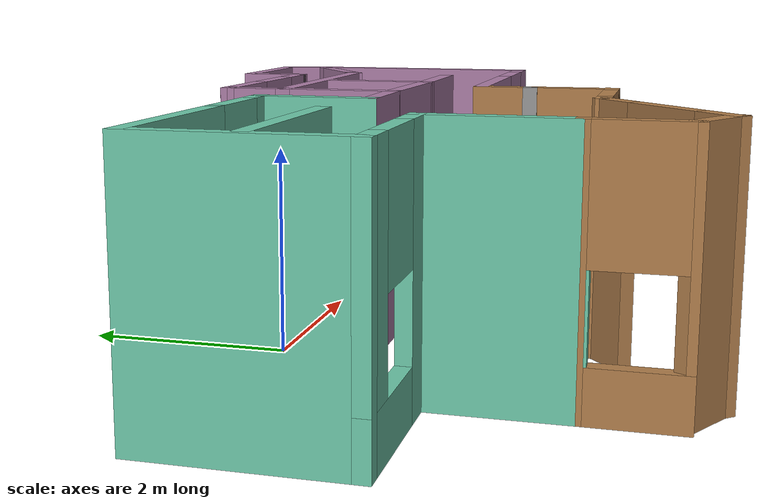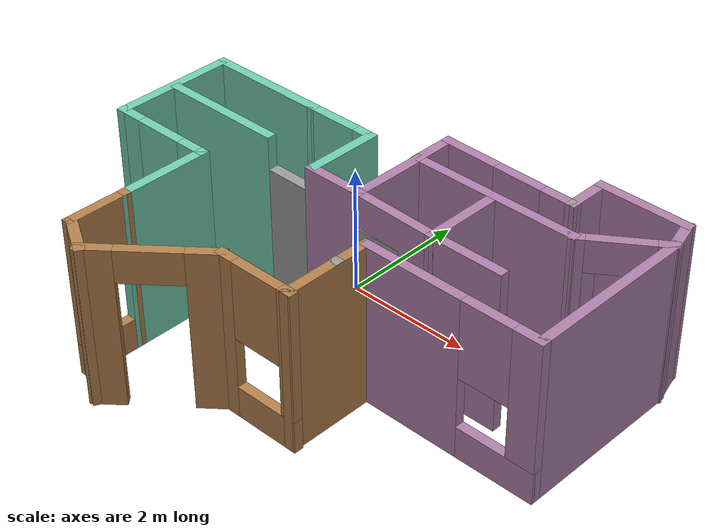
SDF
<?xml version='1.0'?>
<sdf version='1.7'>
  <model name='Dreamhouse'>
    <pose>0.844277 -1.35477 0 0 -0 0</pose>
    <link name='Door_2'>
      <collision name='Door_2_Collision'>
        <geometry>
          <box>
            <size>0.9 0.17 2</size>
          </box>
        </geometry>
        <pose>0 0 1 0 -0 0</pose>
      </collision>
      <visual name='Door_2_Visual'>
        <pose>0 0 1 0 -0 0</pose>
        <geometry>
          <box>
            <size>0.9 0.17 2</size>
          </box>
        </geometry>
        <material>
          <script>
            <uri>file://media/materials/scripts/gazebo.material</uri>
            <name>Gazebo/Grey</name>
          </script>
        </material>
      </visual>
      <pose>-1.27114 0.649396 0 0 -0 0</pose>
    </link>
    <link name='Door_3'>
      <collision name='Door_3_Collision'>
        <geometry>
          <box>
            <size>0.9 0.17 2</size>
          </box>
        </geometry>
        <pose>0 0 1 0 -0 0</pose>
      </collision>
      <visual name='Door_3_Visual'>
        <pose>0 0 1 0 -0 0</pose>
        <geometry>
          <box>
            <size>0.9 0.17 2</size>
          </box>
        </geometry>
        <material>
          <script>
            <uri>file://media/materials/scripts/gazebo.material</uri>
            <name>Gazebo/Grey</name>
          </script>
        </material>
      </visual>
      <pose>0.564272 0.465855 0 0 -0 0</pose>
    </link>
    <link name='Wall_0'>
      <collision name='Wall_0_Collision'>
        <geometry>
          <box>
            <size>1.5 0.15 2.5</size>
          </box>
        </geometry>
        <pose>0 0 1.25 0 -0 0</pose>
      </collision>
      <visual name='Wall_0_Visual'>
        <pose>0 0 1.25 0 -0 0</pose>
        <geometry>
          <box>
            <size>1.5 0.15 2.5</size>
          </box>
        </geometry>
        <material>
          <script>
            <uri>file://media/materials/scripts/gazebo.material</uri>
            <name>Gazebo/Grey</name>
          </script>
          <ambient>0.435294 0.796078 0.67451 1</ambient>
        </material>
        <meta>
          <layer>0</layer>
        </meta>
      </visual>
      <pose>-2.13428 -0.940234 0 0 -0 -1.5708</pose>
    </link>
    <link name='Wall_1'>
      <pose>-2.13754 -2.0435 0 0 -0 -1.57842</pose>
      <visual name='Wall_1_Visual_0'>
        <pose>-0.441135 0 1.25 0 -0 0</pose>
        <geometry>
          <box>
            <size>0.124594 0.15 2.5</size>
          </box>
        </geometry>
        <material>
          <script>
            <uri>file://media/materials/scripts/gazebo.material</uri>
            <name>Gazebo/Wood</name>
          </script>
          <ambient>0.760784 0.662745 0.627451 1</ambient>
        </material>
        <meta>
          <layer>0</layer>
        </meta>
      </visual>
      <collision name='Wall_1_Collision_0'>
        <geometry>
          <box>
            <size>0.124594 0.15 2.5</size>
          </box>
        </geometry>
        <pose>-0.441135 0 1.25 0 -0 0</pose>
      </collision>
      <visual name='Wall_1_Visual_1'>
        <pose>0.062297 0 0.25 0 -0 0</pose>
        <geometry>
          <box>
            <size>0.88227 0.15 0.5</size>
          </box>
        </geometry>
        <material>
          <script>
            <uri>file://media/materials/scripts/gazebo.material</uri>
            <name>Gazebo/Wood</name>
          </script>
          <ambient>0.760784 0.662745 0.627451 1</ambient>
        </material>
        <meta>
          <layer>0</layer>
        </meta>
      </visual>
      <collision name='Wall_1_Collision_1'>
        <geometry>
          <box>
            <size>0.88227 0.15 0.5</size>
          </box>
        </geometry>
        <pose>0.062297 0 0.25 0 -0 0</pose>
      </collision>
      <visual name='Wall_1_Visual_2'>
        <pose>0.462297 0 1.5 0 -0 0</pose>
        <geometry>
          <box>
            <size>0.08227 0.15 2</size>
          </box>
        </geometry>
        <material>
          <script>
            <uri>file://media/materials/scripts/gazebo.material</uri>
            <name>Gazebo/Wood</name>
          </script>
          <ambient>0.760784 0.662745 0.627451 1</ambient>
        </material>
        <meta>
          <layer>0</layer>
        </meta>
      </visual>
      <collision name='Wall_1_Collision_2'>
        <geometry>
          <box>
            <size>0.08227 0.15 2</size>
          </box>
        </geometry>
        <pose>0.462297 0 1.5 0 -0 0</pose>
      </collision>
      <visual name='Wall_1_Visual_3'>
        <pose>0.021162 0 1.9 0 -0 0</pose>
        <geometry>
          <box>
            <size>0.8 0.15 1.2</size>
          </box>
        </geometry>
        <material>
          <script>
            <uri>file://media/materials/scripts/gazebo.material</uri>
            <name>Gazebo/Wood</name>
          </script>
          <ambient>0.760784 0.662745 0.627451 1</ambient>
        </material>
        <meta>
          <layer>0</layer>
        </meta>
      </visual>
      <collision name='Wall_1_Collision_3'>
        <geometry>
          <box>
            <size>0.8 0.15 1.2</size>
          </box>
        </geometry>
        <pose>0.021162 0 1.9 0 -0 0</pose>
      </collision>
    </link>
    <link name='Wall_11'>
      <pose>-2.93428 -0.265234 0 0 -0 3.14159</pose>
      <visual name='Wall_11_Visual_0'>
        <pose>-0.627836 0 1.25 0 -0 0</pose>
        <geometry>
          <box>
            <size>0.494328 0.15 2.5</size>
          </box>
        </geometry>
        <material>
          <script>
            <uri>file://media/materials/scripts/gazebo.material</uri>
            <name>Gazebo/Grey</name>
          </script>
          <ambient>0.435294 0.796078 0.67451 1</ambient>
        </material>
        <meta>
          <layer>0</layer>
        </meta>
      </visual>
      <collision name='Wall_11_Collision_0'>
        <geometry>
          <box>
            <size>0.494328 0.15 2.5</size>
          </box>
        </geometry>
        <pose>-0.627836 0 1.25 0 -0 0</pose>
      </collision>
      <visual name='Wall_11_Visual_1'>
        <pose>0.247164 0 0.25 0 -0 0</pose>
        <geometry>
          <box>
            <size>1.25567 0.15 0.5</size>
          </box>
        </geometry>
        <material>
          <script>
            <uri>file://media/materials/scripts/gazebo.material</uri>
            <name>Gazebo/Grey</name>
          </script>
          <ambient>0.435294 0.796078 0.67451 1</ambient>
        </material>
        <meta>
          <layer>0</layer>
        </meta>
      </visual>
      <collision name='Wall_11_Collision_1'>
        <geometry>
          <box>
            <size>1.25567 0.15 0.5</size>
          </box>
        </geometry>
        <pose>0.247164 0 0.25 0 -0 0</pose>
      </collision>
      <visual name='Wall_11_Visual_2'>
        <pose>0.647164 0 1.5 0 -0 0</pose>
        <geometry>
          <box>
            <size>0.455672 0.15 2</size>
          </box>
        </geometry>
        <material>
          <script>
            <uri>file://media/materials/scripts/gazebo.material</uri>
            <name>Gazebo/Grey</name>
          </script>
          <ambient>0.435294 0.796078 0.67451 1</ambient>
        </material>
        <meta>
          <layer>0</layer>
        </meta>
      </visual>
      <collision name='Wall_11_Collision_2'>
        <geometry>
          <box>
            <size>0.455672 0.15 2</size>
          </box>
        </geometry>
        <pose>0.647164 0 1.5 0 -0 0</pose>
      </collision>
      <visual name='Wall_11_Visual_3'>
        <pose>0.019328 0 1.9 0 -0 0</pose>
        <geometry>
          <box>
            <size>0.8 0.15 1.2</size>
          </box>
        </geometry>
        <material>
          <script>
            <uri>file://media/materials/scripts/gazebo.material</uri>
            <name>Gazebo/Grey</name>
          </script>
          <ambient>0.435294 0.796078 0.67451 1</ambient>
        </material>
        <meta>
          <layer>0</layer>
        </meta>
      </visual>
      <collision name='Wall_11_Collision_3'>
        <geometry>
          <box>
            <size>0.8 0.15 1.2</size>
          </box>
        </geometry>
        <pose>0.019328 0 1.9 0 -0 0</pose>
      </collision>
    </link>
    <link name='Wall_12'>
      <collision name='Wall_12_Collision'>
        <geometry>
          <box>
            <size>2 0.15 2.5</size>
          </box>
        </geometry>
        <pose>0 0 1.25 0 -0 0</pose>
      </collision>
      <visual name='Wall_12_Visual'>
        <pose>0 0 1.25 0 -0 0</pose>
        <geometry>
          <box>
            <size>2 0.15 2.5</size>
          </box>
        </geometry>
        <material>
          <script>
            <uri>file://media/materials/scripts/gazebo.material</uri>
            <name>Gazebo/Grey</name>
          </script>
          <ambient>0.435294 0.796078 0.67451 1</ambient>
        </material>
        <meta>
          <layer>0</layer>
        </meta>
      </visual>
      <pose>-3.73428 0.659766 0 0 -0 1.5708</pose>
    </link>
    <link name='Wall_13'>
      <collision name='Wall_13_Collision'>
        <geometry>
          <box>
            <size>2 0.15 2.5</size>
          </box>
        </geometry>
        <pose>0 0 1.25 0 -0 0</pose>
      </collision>
      <visual name='Wall_13_Visual'>
        <pose>0 0 1.25 0 -0 0</pose>
        <geometry>
          <box>
            <size>2 0.15 2.5</size>
          </box>
        </geometry>
        <material>
          <script>
            <uri>file://media/materials/scripts/gazebo.material</uri>
            <name>Gazebo/Grey</name>
          </script>
          <ambient>0.435294 0.796078 0.67451 1</ambient>
        </material>
        <meta>
          <layer>0</layer>
        </meta>
      </visual>
      <pose>-2.80928 1.58477 0 0 -0 0</pose>
    </link>
    <link name='Wall_14'>
      <pose>-1.33428 1.58477 0 0 -0 0</pose>
      <visual name='Wall_14_Visual_0'>
        <pose>-0.572703 0 1.25 0 -0 0</pose>
        <geometry>
          <box>
            <size>0.104593 0.15 2.5</size>
          </box>
        </geometry>
        <material>
          <script>
            <uri>file://media/materials/scripts/gazebo.material</uri>
            <name>Gazebo/Grey</name>
          </script>
          <ambient>0.435294 0.796078 0.67451 1</ambient>
        </material>
        <meta>
          <layer>0</layer>
        </meta>
      </visual>
      <collision name='Wall_14_Collision_0'>
        <geometry>
          <box>
            <size>0.104593 0.15 2.5</size>
          </box>
        </geometry>
        <pose>-0.572703 0 1.25 0 -0 0</pose>
      </collision>
      <visual name='Wall_14_Visual_1'>
        <pose>0.052297 0 0.25 0 -0 0</pose>
        <geometry>
          <box>
            <size>1.14541 0.15 0.5</size>
          </box>
        </geometry>
        <material>
          <script>
            <uri>file://media/materials/scripts/gazebo.material</uri>
            <name>Gazebo/Grey</name>
          </script>
          <ambient>0.435294 0.796078 0.67451 1</ambient>
        </material>
        <meta>
          <layer>0</layer>
        </meta>
      </visual>
      <collision name='Wall_14_Collision_1'>
        <geometry>
          <box>
            <size>1.14541 0.15 0.5</size>
          </box>
        </geometry>
        <pose>0.052297 0 0.25 0 -0 0</pose>
      </collision>
      <visual name='Wall_14_Visual_2'>
        <pose>0.452297 0 1.5 0 -0 0</pose>
        <geometry>
          <box>
            <size>0.345407 0.15 2</size>
          </box>
        </geometry>
        <material>
          <script>
            <uri>file://media/materials/scripts/gazebo.material</uri>
            <name>Gazebo/Grey</name>
          </script>
          <ambient>0.435294 0.796078 0.67451 1</ambient>
        </material>
        <meta>
          <layer>0</layer>
        </meta>
      </visual>
      <collision name='Wall_14_Collision_2'>
        <geometry>
          <box>
            <size>0.345407 0.15 2</size>
          </box>
        </geometry>
        <pose>0.452297 0 1.5 0 -0 0</pose>
      </collision>
      <visual name='Wall_14_Visual_3'>
        <pose>-0.120407 0 1.9 0 -0 0</pose>
        <geometry>
          <box>
            <size>0.8 0.15 1.2</size>
          </box>
        </geometry>
        <material>
          <script>
            <uri>file://media/materials/scripts/gazebo.material</uri>
            <name>Gazebo/Grey</name>
          </script>
          <ambient>0.435294 0.796078 0.67451 1</ambient>
        </material>
        <meta>
          <layer>0</layer>
        </meta>
      </visual>
      <collision name='Wall_14_Collision_3'>
        <geometry>
          <box>
            <size>0.8 0.15 1.2</size>
          </box>
        </geometry>
        <pose>-0.120407 0 1.9 0 -0 0</pose>
      </collision>
    </link>
    <link name='Wall_15'>
      <collision name='Wall_15_Collision'>
        <geometry>
          <box>
            <size>1.25 0.15 2.5</size>
          </box>
        </geometry>
        <pose>0 0 1.25 0 -0 0</pose>
      </collision>
      <visual name='Wall_15_Visual'>
        <pose>0 0 1.25 0 -0 0</pose>
        <geometry>
          <box>
            <size>1.25 0.15 2.5</size>
          </box>
        </geometry>
        <material>
          <script>
            <uri>file://media/materials/scripts/gazebo.material</uri>
            <name>Gazebo/Grey</name>
          </script>
          <ambient>0.435294 0.796078 0.67451 1</ambient>
        </material>
        <meta>
          <layer>0</layer>
        </meta>
      </visual>
      <pose>-0.784277 1.03477 0 0 -0 -1.5708</pose>
    </link>
    <link name='Wall_16'>
      <collision name='Wall_16_Collision'>
        <geometry>
          <box>
            <size>1 0.15 2.5</size>
          </box>
        </geometry>
        <pose>0 0 1.25 0 -0 0</pose>
      </collision>
      <visual name='Wall_16_Visual'>
        <pose>0 0 1.25 0 -0 0</pose>
        <geometry>
          <box>
            <size>1 0.15 2.5</size>
          </box>
        </geometry>
        <material>
          <script>
            <uri>file://media/materials/scripts/gazebo.material</uri>
            <name>Gazebo/Grey</name>
          </script>
          <ambient>0.678431 0.498039 0.658824 1</ambient>
        </material>
        <meta>
          <layer>0</layer>
        </meta>
      </visual>
      <pose>-0.359277 0.484766 0 0 -0 0</pose>
    </link>
    <link name='Wall_17'>
      <collision name='Wall_17_Collision'>
        <geometry>
          <box>
            <size>1.29018 0.15 2.5</size>
          </box>
        </geometry>
        <pose>0 0 1.25 0 -0 0</pose>
      </collision>
      <visual name='Wall_17_Visual'>
        <pose>0 0 1.25 0 -0 0</pose>
        <geometry>
          <box>
            <size>1.29018 0.15 2.5</size>
          </box>
        </geometry>
        <material>
          <script>
            <uri>file://media/materials/scripts/gazebo.material</uri>
            <name>Gazebo/Grey</name>
          </script>
          <ambient>0.678431 0.498039 0.658824 1</ambient>
        </material>
        <meta>
          <layer>0</layer>
        </meta>
      </visual>
      <pose>0.070723 1.05477 0 0 -0 1.56202</pose>
    </link>
    <link name='Wall_2'>
      <collision name='Wall_2_Collision'>
        <geometry>
          <box>
            <size>0.75 0.15 2.5</size>
          </box>
        </geometry>
        <pose>0 0 1.25 0 -0 0</pose>
      </collision>
      <visual name='Wall_2_Visual'>
        <pose>0 0 1.25 0 -0 0</pose>
        <geometry>
          <box>
            <size>0.75 0.15 2.5</size>
          </box>
        </geometry>
        <material>
          <script>
            <uri>file://media/materials/scripts/gazebo.material</uri>
            <name>Gazebo/Wood</name>
          </script>
          <ambient>0.760784 0.662745 0.627451 1</ambient>
        </material>
        <meta>
          <layer>0</layer>
        </meta>
      </visual>
      <pose>-1.85041 -2.62176 0 0 -0 -0.523599</pose>
    </link>
    <link name='Wall_26'>
      <pose>2.3232 -0.265234 0 0 -0 0</pose>
      <visual name='Wall_26_Visual_0'>
        <pose>-0.628405 0 1.25 0 -0 0</pose>
        <geometry>
          <box>
            <size>1.6567 0.15 2.5</size>
          </box>
        </geometry>
        <material>
          <script>
            <uri>file://media/materials/scripts/gazebo.material</uri>
            <name>Gazebo/Grey</name>
          </script>
          <ambient>0.678431 0.498039 0.658824 1</ambient>
        </material>
        <meta>
          <layer>0</layer>
        </meta>
      </visual>
      <collision name='Wall_26_Collision_0'>
        <geometry>
          <box>
            <size>1.6567 0.15 2.5</size>
          </box>
        </geometry>
        <pose>-0.628405 0 1.25 0 -0 0</pose>
      </collision>
      <visual name='Wall_26_Visual_1'>
        <pose>0.828349 0 0.25 0 -0 0</pose>
        <geometry>
          <box>
            <size>1.25681 0.15 0.5</size>
          </box>
        </geometry>
        <material>
          <script>
            <uri>file://media/materials/scripts/gazebo.material</uri>
            <name>Gazebo/Grey</name>
          </script>
          <ambient>0.678431 0.498039 0.658824 1</ambient>
        </material>
        <meta>
          <layer>0</layer>
        </meta>
      </visual>
      <collision name='Wall_26_Collision_1'>
        <geometry>
          <box>
            <size>1.25681 0.15 0.5</size>
          </box>
        </geometry>
        <pose>0.828349 0 0.25 0 -0 0</pose>
      </collision>
      <visual name='Wall_26_Visual_2'>
        <pose>1.22835 0 1.5 0 -0 0</pose>
        <geometry>
          <box>
            <size>0.45681 0.15 2</size>
          </box>
        </geometry>
        <material>
          <script>
            <uri>file://media/materials/scripts/gazebo.material</uri>
            <name>Gazebo/Grey</name>
          </script>
          <ambient>0.678431 0.498039 0.658824 1</ambient>
        </material>
        <meta>
          <layer>0</layer>
        </meta>
      </visual>
      <collision name='Wall_26_Collision_2'>
        <geometry>
          <box>
            <size>0.45681 0.15 2</size>
          </box>
        </geometry>
        <pose>1.22835 0 1.5 0 -0 0</pose>
      </collision>
      <visual name='Wall_26_Visual_3'>
        <pose>0.599944 0 1.9 0 -0 0</pose>
        <geometry>
          <box>
            <size>0.8 0.15 1.2</size>
          </box>
        </geometry>
        <material>
          <script>
            <uri>file://media/materials/scripts/gazebo.material</uri>
            <name>Gazebo/Grey</name>
          </script>
          <ambient>0.678431 0.498039 0.658824 1</ambient>
        </material>
        <meta>
          <layer>0</layer>
        </meta>
      </visual>
      <collision name='Wall_26_Collision_3'>
        <geometry>
          <box>
            <size>0.8 0.15 1.2</size>
          </box>
        </geometry>
        <pose>0.599944 0 1.9 0 -0 0</pose>
      </collision>
    </link>
    <link name='Wall_27'>
      <collision name='Wall_27_Collision'>
        <geometry>
          <box>
            <size>2.75 0.15 2.5</size>
          </box>
        </geometry>
        <pose>0 0 1.25 0 -0 0</pose>
      </collision>
      <visual name='Wall_27_Visual'>
        <pose>0 0 1.25 0 -0 0</pose>
        <geometry>
          <box>
            <size>2.75 0.15 2.5</size>
          </box>
        </geometry>
        <material>
          <script>
            <uri>file://media/materials/scripts/gazebo.material</uri>
            <name>Gazebo/Grey</name>
          </script>
          <ambient>0.678431 0.498039 0.658824 1</ambient>
        </material>
        <meta>
          <layer>0</layer>
        </meta>
      </visual>
      <pose>3.70495 1.03477 0 0 -0 1.5708</pose>
    </link>
    <link name='Wall_3'>
      <pose>-0.933117 -2.1935 0 0 -0 0.698901</pose>
      <visual name='Wall_3_Visual_0'>
        <pose>-0.717615 0 1.25 0 -0 0</pose>
        <geometry>
          <box>
            <size>0.512357 0.15 2.5</size>
          </box>
        </geometry>
        <material>
          <script>
            <uri>file://media/materials/scripts/gazebo.material</uri>
            <name>Gazebo/Wood</name>
          </script>
          <ambient>0.760784 0.662745 0.627451 1</ambient>
        </material>
        <meta>
          <layer>0</layer>
        </meta>
      </visual>
      <collision name='Wall_3_Collision_0'>
        <geometry>
          <box>
            <size>0.512357 0.15 2.5</size>
          </box>
        </geometry>
        <pose>-0.717615 0 1.25 0 -0 0</pose>
      </collision>
      <visual name='Wall_3_Visual_1'>
        <pose>0.706179 0 1.25 0 -0 0</pose>
        <geometry>
          <box>
            <size>0.53523 0.15 2.5</size>
          </box>
        </geometry>
        <material>
          <script>
            <uri>file://media/materials/scripts/gazebo.material</uri>
            <name>Gazebo/Wood</name>
          </script>
          <ambient>0.760784 0.662745 0.627451 1</ambient>
        </material>
        <meta>
          <layer>0</layer>
        </meta>
      </visual>
      <collision name='Wall_3_Collision_1'>
        <geometry>
          <box>
            <size>0.53523 0.15 2.5</size>
          </box>
        </geometry>
        <pose>0.706179 0 1.25 0 -0 0</pose>
      </collision>
      <visual name='Wall_3_Visual_2'>
        <pose>-0.011436 0 2.25 0 -0 0</pose>
        <geometry>
          <box>
            <size>0.9 0.15 0.5</size>
          </box>
        </geometry>
        <material>
          <script>
            <uri>file://media/materials/scripts/gazebo.material</uri>
            <name>Gazebo/Wood</name>
          </script>
          <ambient>0.760784 0.662745 0.627451 1</ambient>
        </material>
        <meta>
          <layer>0</layer>
        </meta>
      </visual>
      <collision name='Wall_3_Collision_2'>
        <geometry>
          <box>
            <size>0.9 0.15 0.5</size>
          </box>
        </geometry>
        <pose>-0.011436 0 2.25 0 -0 0</pose>
      </collision>
    </link>
    <link name='Wall_30'>
      <collision name='Wall_30_Collision'>
        <geometry>
          <box>
            <size>0.15 0.15 2.5</size>
          </box>
        </geometry>
        <pose>0 0 1.25 0 -0 0</pose>
      </collision>
      <visual name='Wall_30_Visual'>
        <pose>0 0 1.25 0 -0 0</pose>
        <geometry>
          <box>
            <size>0.15 0.15 2.5</size>
          </box>
        </geometry>
        <material>
          <script>
            <uri>file://media/materials/scripts/gazebo.material</uri>
            <name>Gazebo/Grey</name>
          </script>
          <ambient>1 1 1 1</ambient>
        </material>
        <meta>
          <layer>0</layer>
        </meta>
      </visual>
      <pose>2.2269 2.18477 0 0 -0 0</pose>
    </link>
    <link name='Wall_31'>
      <collision name='Wall_31_Collision'>
        <geometry>
          <box>
            <size>0.15 0.15 2.5</size>
          </box>
        </geometry>
        <pose>0 0 1.25 0 -0 0</pose>
      </collision>
      <visual name='Wall_31_Visual'>
        <pose>0 0 1.25 0 -0 0</pose>
        <geometry>
          <box>
            <size>0.15 0.15 2.5</size>
          </box>
        </geometry>
        <material>
          <script>
            <uri>file://media/materials/scripts/gazebo.material</uri>
            <name>Gazebo/Grey</name>
          </script>
          <ambient>1 1 1 1</ambient>
        </material>
        <meta>
          <layer>0</layer>
        </meta>
      </visual>
      <pose>2.2269 2.18477 0 0 -0 0</pose>
    </link>
    <link name='Wall_32'>
      <collision name='Wall_32_Collision'>
        <geometry>
          <box>
            <size>0.15 0.15 2.5</size>
          </box>
        </geometry>
        <pose>0 0 1.25 0 -0 0</pose>
      </collision>
      <visual name='Wall_32_Visual'>
        <pose>0 0 1.25 0 -0 0</pose>
        <geometry>
          <box>
            <size>0.15 0.15 2.5</size>
          </box>
        </geometry>
        <material>
          <script>
            <uri>file://media/materials/scripts/gazebo.material</uri>
            <name>Gazebo/Grey</name>
          </script>
          <ambient>1 1 1 1</ambient>
        </material>
        <meta>
          <layer>0</layer>
        </meta>
      </visual>
      <pose>2.2269 2.18477 0 0 -0 0</pose>
    </link>
    <link name='Wall_38'>
      <collision name='Wall_38_Collision'>
        <geometry>
          <box>
            <size>2.75 0.15 2.5</size>
          </box>
        </geometry>
        <pose>0 0 1.25 0 -0 0</pose>
      </collision>
      <visual name='Wall_38_Visual'>
        <pose>0 0 1.25 0 -0 0</pose>
        <geometry>
          <box>
            <size>2.75 0.15 2.5</size>
          </box>
        </geometry>
        <material>
          <script>
            <uri>file://media/materials/scripts/gazebo.material</uri>
            <name>Gazebo/Grey</name>
          </script>
          <ambient>0.678431 0.498039 0.658824 1</ambient>
        </material>
        <meta>
          <layer>0</layer>
        </meta>
      </visual>
      <pose>1.36572 1.62477 0 0 -0 0</pose>
    </link>
    <link name='Wall_39'>
      <pose>3.19034 1.97977 0 0 -0 0.603872</pose>
      <visual name='Wall_39_Visual_0'>
        <pose>-0.59066 0 1.25 0 -0 0</pose>
        <geometry>
          <box>
            <size>0.219046 0.15 2.5</size>
          </box>
        </geometry>
        <material>
          <script>
            <uri>file://media/materials/scripts/gazebo.material</uri>
            <name>Gazebo/Grey</name>
          </script>
          <ambient>0.678431 0.498039 0.658824 1</ambient>
        </material>
        <meta>
          <layer>0</layer>
        </meta>
      </visual>
      <collision name='Wall_39_Collision_0'>
        <geometry>
          <box>
            <size>0.219046 0.15 2.5</size>
          </box>
        </geometry>
        <pose>-0.59066 0 1.25 0 -0 0</pose>
      </collision>
      <visual name='Wall_39_Visual_1'>
        <pose>0.559523 0 1.25 0 -0 0</pose>
        <geometry>
          <box>
            <size>0.28132 0.15 2.5</size>
          </box>
        </geometry>
        <material>
          <script>
            <uri>file://media/materials/scripts/gazebo.material</uri>
            <name>Gazebo/Grey</name>
          </script>
          <ambient>0.678431 0.498039 0.658824 1</ambient>
        </material>
        <meta>
          <layer>0</layer>
        </meta>
      </visual>
      <collision name='Wall_39_Collision_1'>
        <geometry>
          <box>
            <size>0.28132 0.15 2.5</size>
          </box>
        </geometry>
        <pose>0.559523 0 1.25 0 -0 0</pose>
      </collision>
      <visual name='Wall_39_Visual_2'>
        <pose>-0.031137 0 2.25 0 -0 0</pose>
        <geometry>
          <box>
            <size>0.9 0.15 0.5</size>
          </box>
        </geometry>
        <material>
          <script>
            <uri>file://media/materials/scripts/gazebo.material</uri>
            <name>Gazebo/Grey</name>
          </script>
          <ambient>0.678431 0.498039 0.658824 1</ambient>
        </material>
        <meta>
          <layer>0</layer>
        </meta>
      </visual>
      <collision name='Wall_39_Collision_2'>
        <geometry>
          <box>
            <size>0.9 0.15 0.5</size>
          </box>
        </geometry>
        <pose>-0.031137 0 2.25 0 -0 0</pose>
      </collision>
    </link>
    <link name='Wall_4'>
      <pose>0.3482 -1.61523 0 0 -0 0</pose>
      <visual name='Wall_4_Visual_0'>
        <pose>-0.513695 0 1.25 0 -0 0</pose>
        <geometry>
          <box>
            <size>0.309103 0.15 2.5</size>
          </box>
        </geometry>
        <material>
          <script>
            <uri>file://media/materials/scripts/gazebo.material</uri>
            <name>Gazebo/Wood</name>
          </script>
          <ambient>0.760784 0.662745 0.627451 1</ambient>
        </material>
        <meta>
          <layer>0</layer>
        </meta>
      </visual>
      <collision name='Wall_4_Collision_0'>
        <geometry>
          <box>
            <size>0.309103 0.15 2.5</size>
          </box>
        </geometry>
        <pose>-0.513695 0 1.25 0 -0 0</pose>
      </collision>
      <visual name='Wall_4_Visual_1'>
        <pose>0.154551 0 0.25 0 -0 0</pose>
        <geometry>
          <box>
            <size>1.02739 0.15 0.5</size>
          </box>
        </geometry>
        <material>
          <script>
            <uri>file://media/materials/scripts/gazebo.material</uri>
            <name>Gazebo/Wood</name>
          </script>
          <ambient>0.760784 0.662745 0.627451 1</ambient>
        </material>
        <meta>
          <layer>0</layer>
        </meta>
      </visual>
      <collision name='Wall_4_Collision_1'>
        <geometry>
          <box>
            <size>1.02739 0.15 0.5</size>
          </box>
        </geometry>
        <pose>0.154551 0 0.25 0 -0 0</pose>
      </collision>
      <visual name='Wall_4_Visual_2'>
        <pose>0.554551 0 1.5 0 -0 0</pose>
        <geometry>
          <box>
            <size>0.22739 0.15 2</size>
          </box>
        </geometry>
        <material>
          <script>
            <uri>file://media/materials/scripts/gazebo.material</uri>
            <name>Gazebo/Wood</name>
          </script>
          <ambient>0.760784 0.662745 0.627451 1</ambient>
        </material>
        <meta>
          <layer>0</layer>
        </meta>
      </visual>
      <collision name='Wall_4_Collision_2'>
        <geometry>
          <box>
            <size>0.22739 0.15 2</size>
          </box>
        </geometry>
        <pose>0.554551 0 1.5 0 -0 0</pose>
      </collision>
      <visual name='Wall_4_Visual_3'>
        <pose>0.040856 0 1.9 0 -0 0</pose>
        <geometry>
          <box>
            <size>0.8 0.15 1.2</size>
          </box>
        </geometry>
        <material>
          <script>
            <uri>file://media/materials/scripts/gazebo.material</uri>
            <name>Gazebo/Wood</name>
          </script>
          <ambient>0.760784 0.662745 0.627451 1</ambient>
        </material>
        <meta>
          <layer>0</layer>
        </meta>
      </visual>
      <collision name='Wall_4_Collision_3'>
        <geometry>
          <box>
            <size>0.8 0.15 1.2</size>
          </box>
        </geometry>
        <pose>0.040856 0 1.9 0 -0 0</pose>
      </collision>
    </link>
    <link name='Wall_41'>
      <collision name='Wall_41_Collision'>
        <geometry>
          <box>
            <size>2 0.15 2.5</size>
          </box>
        </geometry>
        <pose>0 0 1.25 0 -0 0</pose>
      </collision>
      <visual name='Wall_41_Visual'>
        <pose>0 0 1.25 0 -0 0</pose>
        <geometry>
          <box>
            <size>2 0.15 2.5</size>
          </box>
        </geometry>
        <material>
          <script>
            <uri>file://media/materials/scripts/gazebo.material</uri>
            <name>Gazebo/Grey</name>
          </script>
          <ambient>0.435294 0.796078 0.67451 1</ambient>
        </material>
        <meta>
          <layer>0</layer>
        </meta>
      </visual>
      <pose>-2.73218 0.649396 0 0 -0 0</pose>
    </link>
    <link name='Wall_43'>
      <collision name='Wall_43_Collision'>
        <geometry>
          <box>
            <size>1.25 0.15 2.5</size>
          </box>
        </geometry>
        <pose>0 0 1.25 0 -0 0</pose>
      </collision>
      <visual name='Wall_43_Visual'>
        <pose>0 0 1.25 0 -0 0</pose>
        <geometry>
          <box>
            <size>1.25 0.15 2.5</size>
          </box>
        </geometry>
        <material>
          <script>
            <uri>file://media/materials/scripts/gazebo.material</uri>
            <name>Gazebo/Grey</name>
          </script>
          <ambient>0.678431 0.498039 0.658824 1</ambient>
        </material>
        <meta>
          <layer>0</layer>
        </meta>
      </visual>
      <pose>1.39021 0.986513 0 0 -0 -1.5708</pose>
    </link>
    <link name='Wall_44'>
      <collision name='Wall_44_Collision'>
        <geometry>
          <box>
            <size>1.25 0.15 2.5</size>
          </box>
        </geometry>
        <pose>0 0 1.25 0 -0 0</pose>
      </collision>
      <visual name='Wall_44_Visual'>
        <pose>0 0 1.25 0 -0 0</pose>
        <geometry>
          <box>
            <size>1.25 0.15 2.5</size>
          </box>
        </geometry>
        <material>
          <script>
            <uri>file://media/materials/scripts/gazebo.material</uri>
            <name>Gazebo/Grey</name>
          </script>
          <ambient>0.678431 0.498039 0.658824 1</ambient>
        </material>
        <meta>
          <layer>0</layer>
        </meta>
      </visual>
      <pose>1.94021 0.436513 0 0 -0 0</pose>
    </link>
    <link name='Wall_46'>
      <collision name='Wall_46_Collision'>
        <geometry>
          <box>
            <size>1.47536 0.15 2.5</size>
          </box>
        </geometry>
        <pose>0 0 1.25 0 -0 0</pose>
      </collision>
      <visual name='Wall_46_Visual'>
        <pose>0 0 1.25 0 -0 0</pose>
        <geometry>
          <box>
            <size>1.47536 0.15 2.5</size>
          </box>
        </geometry>
        <material>
          <script>
            <uri>file://media/materials/scripts/gazebo.material</uri>
            <name>Gazebo/Grey</name>
          </script>
          <ambient>0.678431 0.498039 0.658824 1</ambient>
        </material>
        <meta>
          <layer>0</layer>
        </meta>
      </visual>
      <pose>0.727966 0.46064 0 0 -0 3.10518</pose>
    </link>
    <link name='Wall_50'>
      <collision name='Wall_50_Collision'>
        <geometry>
          <box>
            <size>0.75 0.15 2.5</size>
          </box>
        </geometry>
        <pose>0 0 1.25 0 -0 0</pose>
      </collision>
      <visual name='Wall_50_Visual'>
        <pose>0 0 1.25 0 -0 0</pose>
        <geometry>
          <box>
            <size>0.75 0.15 2.5</size>
          </box>
        </geometry>
        <material>
          <script>
            <uri>file://media/materials/scripts/gazebo.material</uri>
            <name>Gazebo/Grey</name>
          </script>
          <ambient>0.678431 0.498039 0.658824 1</ambient>
        </material>
        <meta>
          <layer>0</layer>
        </meta>
      </visual>
      <pose>0.065723 1.92477 0 0 -0 1.5708</pose>
    </link>
    <link name='Wall_51'>
      <pose>1.14631 2.20477 0 0 -0 -0.018506</pose>
      <visual name='Wall_51_Visual_0'>
        <pose>-0.682908 0 1.25 0 -0 0</pose>
        <geometry>
          <box>
            <size>0.945735 0.15 2.5</size>
          </box>
        </geometry>
        <material>
          <script>
            <uri>file://media/materials/scripts/gazebo.material</uri>
            <name>Gazebo/Grey</name>
          </script>
          <ambient>0.678431 0.498039 0.658824 1</ambient>
        </material>
        <meta>
          <layer>0</layer>
        </meta>
      </visual>
      <collision name='Wall_51_Collision_0'>
        <geometry>
          <box>
            <size>0.945735 0.15 2.5</size>
          </box>
        </geometry>
        <pose>-0.682908 0 1.25 0 -0 0</pose>
      </collision>
      <visual name='Wall_51_Visual_1'>
        <pose>0.472868 0 0.25 0 -0 0</pose>
        <geometry>
          <box>
            <size>1.36582 0.15 0.5</size>
          </box>
        </geometry>
        <material>
          <script>
            <uri>file://media/materials/scripts/gazebo.material</uri>
            <name>Gazebo/Grey</name>
          </script>
          <ambient>0.678431 0.498039 0.658824 1</ambient>
        </material>
        <meta>
          <layer>0</layer>
        </meta>
      </visual>
      <collision name='Wall_51_Collision_1'>
        <geometry>
          <box>
            <size>1.36582 0.15 0.5</size>
          </box>
        </geometry>
        <pose>0.472868 0 0.25 0 -0 0</pose>
      </collision>
      <visual name='Wall_51_Visual_2'>
        <pose>0.872868 0 1.5 0 -0 0</pose>
        <geometry>
          <box>
            <size>0.565816 0.15 2</size>
          </box>
        </geometry>
        <material>
          <script>
            <uri>file://media/materials/scripts/gazebo.material</uri>
            <name>Gazebo/Grey</name>
          </script>
          <ambient>0.678431 0.498039 0.658824 1</ambient>
        </material>
        <meta>
          <layer>0</layer>
        </meta>
      </visual>
      <collision name='Wall_51_Collision_2'>
        <geometry>
          <box>
            <size>0.565816 0.15 2</size>
          </box>
        </geometry>
        <pose>0.872868 0 1.5 0 -0 0</pose>
      </collision>
      <visual name='Wall_51_Visual_3'>
        <pose>0.18996 0 1.9 0 -0 0</pose>
        <geometry>
          <box>
            <size>0.8 0.15 1.2</size>
          </box>
        </geometry>
        <material>
          <script>
            <uri>file://media/materials/scripts/gazebo.material</uri>
            <name>Gazebo/Grey</name>
          </script>
          <ambient>0.678431 0.498039 0.658824 1</ambient>
        </material>
        <meta>
          <layer>0</layer>
        </meta>
      </visual>
      <collision name='Wall_51_Collision_3'>
        <geometry>
          <box>
            <size>0.8 0.15 1.2</size>
          </box>
        </geometry>
        <pose>0.18996 0 1.9 0 -0 0</pose>
      </collision>
    </link>
    <link name='Wall_52'>
      <collision name='Wall_52_Collision'>
        <geometry>
          <box>
            <size>0.75 0.15 2.5</size>
          </box>
        </geometry>
        <pose>0 0 1.25 0 -0 0</pose>
      </collision>
      <visual name='Wall_52_Visual'>
        <pose>0 0 1.25 0 -0 0</pose>
        <geometry>
          <box>
            <size>0.75 0.15 2.5</size>
          </box>
        </geometry>
        <material>
          <script>
            <uri>file://media/materials/scripts/gazebo.material</uri>
            <name>Gazebo/Grey</name>
          </script>
          <ambient>0.678431 0.498039 0.658824 1</ambient>
        </material>
        <meta>
          <layer>0</layer>
        </meta>
      </visual>
      <pose>2.2269 2.48477 0 0 -0 1.5708</pose>
    </link>
    <link name='Wall_53'>
      <collision name='Wall_53_Collision'>
        <geometry>
          <box>
            <size>1.5 0.15 2.5</size>
          </box>
        </geometry>
        <pose>0 0 1.25 0 -0 0</pose>
      </collision>
      <visual name='Wall_53_Visual'>
        <pose>0 0 1.25 0 -0 0</pose>
        <geometry>
          <box>
            <size>1.5 0.15 2.5</size>
          </box>
        </geometry>
        <material>
          <script>
            <uri>file://media/materials/scripts/gazebo.material</uri>
            <name>Gazebo/Grey</name>
          </script>
          <ambient>0.678431 0.498039 0.658824 1</ambient>
        </material>
        <meta>
          <layer>0</layer>
        </meta>
      </visual>
      <pose>2.9019 2.78477 0 0 -0 0</pose>
    </link>
    <link name='Wall_54'>
      <collision name='Wall_54_Collision'>
        <geometry>
          <box>
            <size>0.617864 0.15 2.5</size>
          </box>
        </geometry>
        <pose>0 0 1.25 0 -0 0</pose>
      </collision>
      <visual name='Wall_54_Visual'>
        <pose>0 0 1.25 0 -0 0</pose>
        <geometry>
          <box>
            <size>0.617864 0.15 2.5</size>
          </box>
        </geometry>
        <material>
          <script>
            <uri>file://media/materials/scripts/gazebo.material</uri>
            <name>Gazebo/Grey</name>
          </script>
          <ambient>0.678431 0.498039 0.658824 1</ambient>
        </material>
        <meta>
          <layer>0</layer>
        </meta>
      </visual>
      <pose>3.64093 2.55977 0 0 -0 -1.29357</pose>
    </link>
    <link name='Wall_6'>
      <collision name='Wall_6_Collision'>
        <geometry>
          <box>
            <size>1.5 0.15 2.5</size>
          </box>
        </geometry>
        <pose>0 0 1.25 0 -0 0</pose>
      </collision>
      <visual name='Wall_6_Visual'>
        <pose>0 0 1.25 0 -0 0</pose>
        <geometry>
          <box>
            <size>1.5 0.15 2.5</size>
          </box>
        </geometry>
        <material>
          <script>
            <uri>file://media/materials/scripts/gazebo.material</uri>
            <name>Gazebo/Wood</name>
          </script>
          <ambient>0.760784 0.662745 0.627451 1</ambient>
        </material>
        <meta>
          <layer>0</layer>
        </meta>
      </visual>
      <pose>0.910856 -0.940234 0 0 -0 1.5708</pose>
    </link>
    <link name='Wall_8'>
      <collision name='Wall_8_Collision'>
        <geometry>
          <box>
            <size>0.15 0.15 2.5</size>
          </box>
        </geometry>
        <pose>0 0 1.25 0 -0 0</pose>
      </collision>
      <visual name='Wall_8_Visual'>
        <pose>0 0 1.25 0 -0 0</pose>
        <geometry>
          <box>
            <size>0.15 0.15 2.5</size>
          </box>
        </geometry>
        <material>
          <script>
            <uri>file://media/materials/scripts/gazebo.material</uri>
            <name>Gazebo/Grey</name>
          </script>
          <ambient>1 1 1 1</ambient>
        </material>
        <meta>
          <layer>0</layer>
        </meta>
      </visual>
      <pose>0.904954 -0.784849 0 0 -0 0</pose>
    </link>
    <static>1</static>
  </model>
</sdf>
